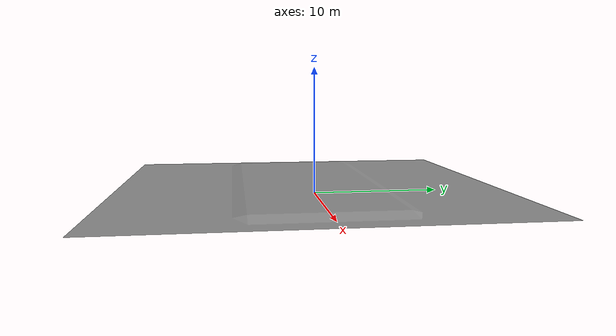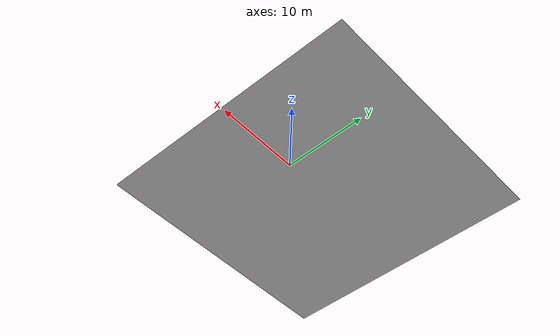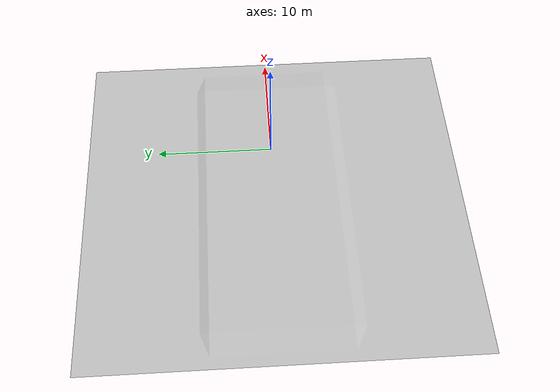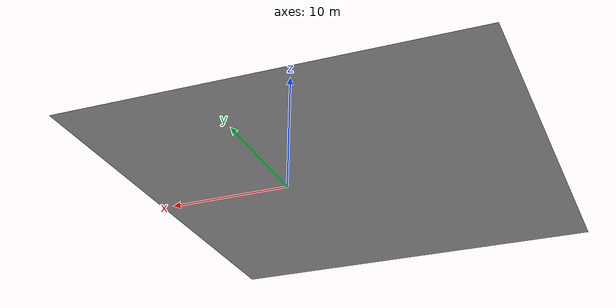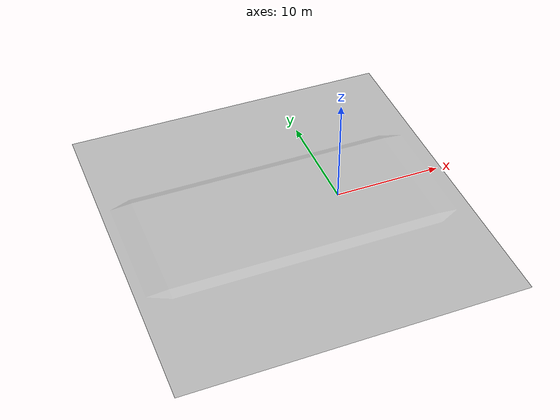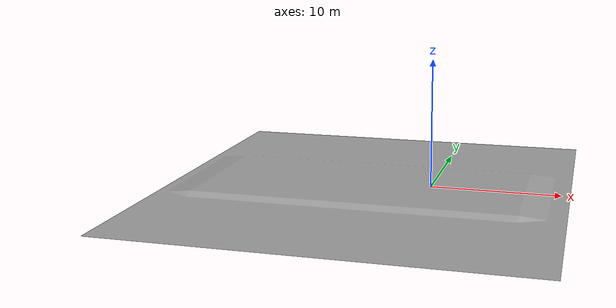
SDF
<?xml version='1.0'?>
<sdf version='1.6'>
  <model name='Floor'>
    <static>true</static>
    <link name="link">
      <pose>-5 0 0 0 0 1.570796</pose>
      <visual name="visual">
            <geometry>
                <mesh>
                  <scale>1.3 1.3 1.3</scale>
                  <uri>model://workcell_floor/meshes/floor.dae</uri>
                </mesh>
            </geometry>
        </visual>
        <collision name="collision">
            <geometry>
                <mesh>
                  <scale>1.3 1.3 1.3</scale>
                  <uri>model://workcell_floor/meshes/floor.dae</uri>
                </mesh>
            </geometry>
        </collision>
    </link>
  </model>
</sdf>
